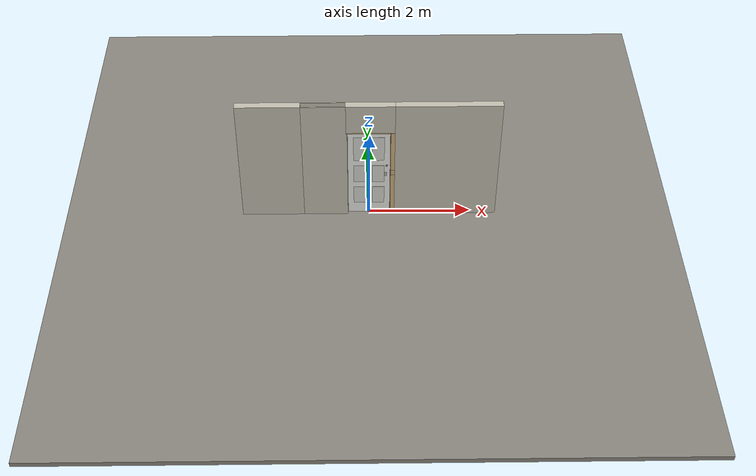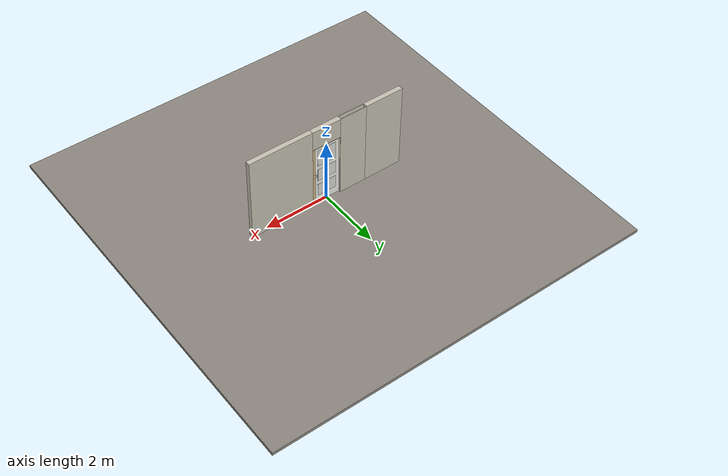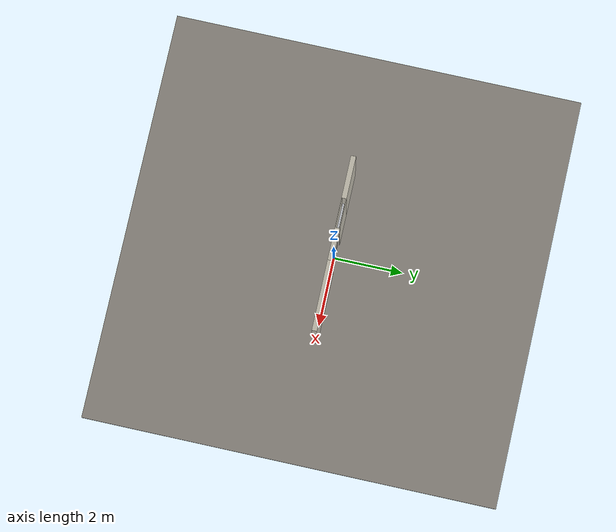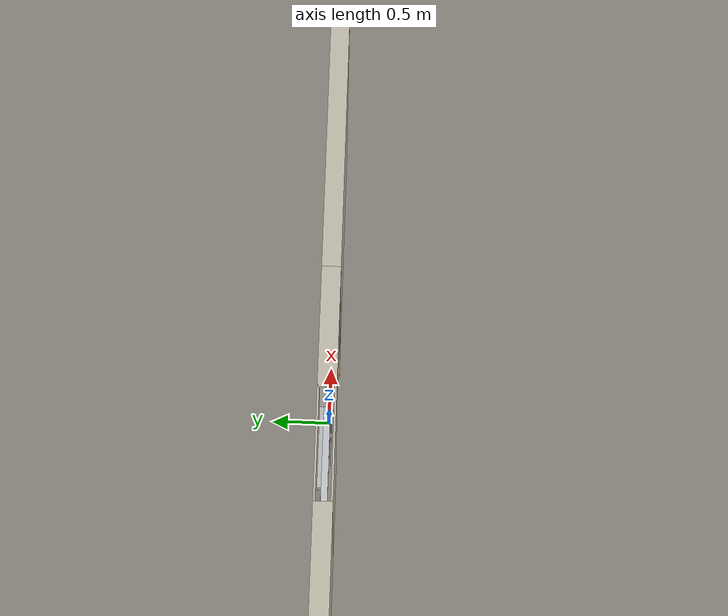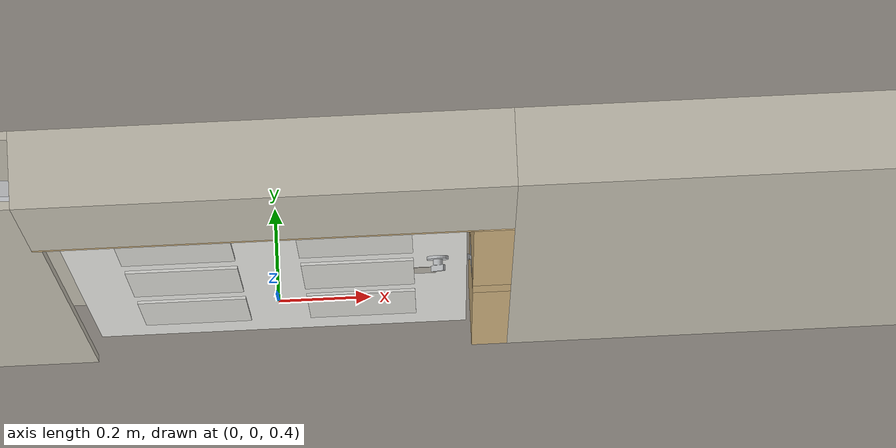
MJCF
<?xml version="1.0" ?>
<mujoco model="db0370_sliding_single_simple">
  <compiler angle="radian" meshdir="../../hardware" texturedir="../../textures" autolimits="true" inertiafromgeom="false"/>
  <option timestep="0.002" integrator="implicitfast" cone="elliptic" impratio="10" noslip_iterations="3">
    <flag multiccd="enable"/>
  </option>
  <size memory="16M"/>
  <default>
    <geom condim="4" solref="0.005 1" solimp="0.95 0.99 0.001"/>
    <joint solreflimit="0.005 1" solimplimit="0.95 0.99 0.001"/>
    <tendon solreflimit="0.005 1"/>
    <equality solref="0.002 1"/>
  </default>
  <visual>
    <headlight ambient="0.4 0.4 0.4" diffuse="0.7 0.7 0.7" specular="0.2 0.2 0.2"/>
    <quality shadowsize="4096"/>
    <map znear="0.01" zfar="60"/>
  </visual>
  <asset>
    <mesh name="thumbturn_eb5c9899a3" file="thumbturn_eb5c9899a3.obj"/>
    <material name="mat_floor" rgba="0.55 0.53 0.5 1" specular="0.2" shininess="0.15" reflectance="0"/>
    <material name="mat_wall" rgba="0.78 0.76 0.7 1" specular="0.2" shininess="0.1" reflectance="0"/>
    <material name="mat_frame" rgba="0.82 0.7 0.5 1" specular="0.2" shininess="0.45" reflectance="0"/>
    <material name="mat_track" rgba="0.8 0.81 0.83 1" specular="0.8" shininess="0.6" reflectance="0.4"/>
    <material name="mat_leaf" rgba="0.93 0.93 0.91 1" specular="0.2" shininess="0.49" reflectance="0"/>
    <material name="mat_leaf_panel" rgba="0.856 0.856 0.837 1" specular="0.2" shininess="0.49" reflectance="0"/>
    <material name="mat_roller" rgba="0.65 0.66 0.68 1" specular="0.74" shininess="0.5" reflectance="0.36"/>
    <material name="mat_op_nickel_satin" rgba="0.72 0.7 0.66 1" specular="0.8" shininess="0.65" reflectance="0.4"/>
    <material name="mat_hook" rgba="0.75 0.76 0.77 1" specular="0.8" shininess="0.65" reflectance="0.4"/>
    <texture name="skybox" type="skybox" builtin="gradient" rgb1="0.6 0.7 0.85" rgb2="0.9 0.92 0.95" width="256" height="256"/>
  </asset>
  <worldbody>
    <light name="sun" pos="1.5 -2.5 4" dir="-0.3 0.5 -0.8" directional="true" diffuse="0.8 0.8 0.8" specular="0.3 0.3 0.3" castshadow="true"/>
    <light name="fill" pos="-1.5 2.5 3" dir="0.3 -0.5 -0.7" directional="true" diffuse="0.35 0.35 0.4" castshadow="false"/>
    <camera name="robot_view" pos="0 -2.54875 1.73965" xyaxes="1 0 0 0 0.26963 0.962964" fovy="52"/>
    <camera name="far_view" pos="0 2.54875 1.73965" xyaxes="-1 0 0 0 -0.26963 0.962964" fovy="52"/>
    <camera name="iso" pos="1.93705 -2.14095 2.14745" xyaxes="0.741536 0.670913 0 -0.242917 0.268487 0.932151" fovy="46"/>
    <camera name="detail_handle" pos="0.4965 -0.8175 1.28" xyaxes="0.97561 0.219512 0 -0.070934 0.315262 0.94635" fovy="38"/>
    <geom name="floor" type="box" size="6 6 0.05" pos="0 0 -0.05" material="mat_floor" group="0" contype="1" conaffinity="1" friction="0.8 0.005 0.0001" density="2400"/>
    <geom name="wall_right" type="box" size="1.00225 0.0725 1.35" pos="1.49775 0 1.35" material="mat_wall" group="0" contype="1" conaffinity="1" friction="0.6 0.005 0.0001" density="800"/>
    <geom name="wall_header" type="box" size="0.4655 0.0725 0.3145" pos="0.03 0 2.3855" material="mat_wall" group="0" contype="1" conaffinity="1" friction="0.6 0.005 0.0001" density="800"/>
    <geom name="pocket_skin_n" type="box" size="0.4315 0.008 1.35" pos="-0.848 -0.0645 1.35" material="mat_wall" group="0" contype="1" conaffinity="1" friction="0.6 0.005 0.0001" density="800"/>
    <geom name="pocket_skin_p" type="box" size="0.4315 0.008 1.35" pos="-0.848 0.0645 1.35" material="mat_wall" group="0" contype="1" conaffinity="1" friction="0.6 0.005 0.0001" density="800"/>
    <geom name="wall_pocket_far" type="box" size="0.61025 0.0725 1.35" pos="-1.88975 0 1.35" material="mat_wall" group="0" contype="1" conaffinity="1" friction="0.6 0.005 0.0001" density="800"/>
    <geom name="jamb_head" type="box" size="0.4355 0.0725 0.0095" pos="0 0 2.0615" material="mat_frame" group="0" contype="1" conaffinity="1" friction="0.6 0.005 0.0001" density="300"/>
    <geom name="track_header" type="box" size="0.8425 0.025 0.04" pos="-0.386 0 2.111" material="mat_track" group="0" contype="1" conaffinity="1" friction="0.6 0.005 0.0001" density="2700"/>
    <geom name="leaf_hook_keeper" type="box" size="0.008 0.015 0.006" pos="0.4245 0 1.08" material="mat_hook" group="0" contype="1" conaffinity="1" friction="0.6 0.005 0.0001" density="7900"/>
    <geom name="jamb_latch_pwall_1080_n" type="box" size="0.0395 0.0245 0.06" pos="0.456 -0.048 1.08" material="mat_frame" group="0" contype="1" conaffinity="1" friction="0.6 0.005 0.0001" density="300"/>
    <geom name="jamb_latch_pwall_1080_p" type="box" size="0.0395 0.0245 0.06" pos="0.456 0.048 1.08" material="mat_frame" group="0" contype="1" conaffinity="1" friction="0.6 0.005 0.0001" density="300"/>
    <geom name="jamb_latch_pback_1080" type="box" size="0.004 0.0235 0.06" pos="0.4915 0 1.08" material="mat_frame" group="0" contype="1" conaffinity="1" friction="0.6 0.005 0.0001" density="300"/>
    <geom name="jamb_latch_0" type="box" size="0.0395 0.0725 0.51" pos="0.456 0 0.51" material="mat_frame" group="0" contype="1" conaffinity="1" friction="0.6 0.005 0.0001" density="300"/>
    <geom name="jamb_latch_1" type="box" size="0.0395 0.0725 0.456" pos="0.456 0 1.596" material="mat_frame" group="0" contype="1" conaffinity="1" friction="0.6 0.005 0.0001" density="300"/>
    <geom name="leaf_hook_keeper_plate_b" type="box" size="0.0295 0.003 0.0005" pos="0.416 0 1.017" quat="-0.5 -0.5 0.5 0.5" material="mat_hook" group="1" contype="0" conaffinity="0" density="7800"/>
    <geom name="leaf_hook_keeper_plate_l" type="box" size="0.003 0.06 0.0005" pos="0.416 0.0265 1.08" quat="-0.5 -0.5 0.5 0.5" material="mat_hook" group="1" contype="0" conaffinity="0" density="7800"/>
    <geom name="leaf_hook_keeper_plate_t" type="box" size="0.0295 0.003 0.0005" pos="0.416 0 1.143" quat="-0.5 -0.5 0.5 0.5" material="mat_hook" group="1" contype="0" conaffinity="0" density="7800"/>
    <geom name="leaf_hook_keeper_plate_r" type="box" size="0.003 0.06 0.0005" pos="0.416 -0.0265 1.08" quat="-0.5 -0.5 0.5 0.5" material="mat_hook" group="1" contype="0" conaffinity="0" density="7800"/>
    <geom name="track_header_bracket" type="box" size="0.674 0.01625 0.032" pos="-0.386 0.04075 2.111" material="mat_hook" group="1" contype="0" conaffinity="0" density="7850"/>
    <geom name="leaf_hook_keeper_bracket" type="box" size="0.0064 0.00475 0.005" pos="0.4245 0.01925 1.08" material="mat_hook" group="1" contype="0" conaffinity="0" density="7850"/>
    <site name="approach_point" pos="0 -1.5 0" quat="1 0 0 0" size="0.05" rgba="0.2 0.9 0.2 0.5" group="4"/>
    <site name="goal_point" pos="0 1.5 0" quat="1 0 0 0" size="0.05" rgba="0.2 0.9 0.2 0.5" group="4"/>
    <site name="door_plane_center" pos="0 0 1.026" quat="1 0 0 0" size="0.02" rgba="0.2 0.9 0.2 0.5" group="4"/>
    <body name="leaf" pos="0 0 0">
      <inertial pos="0.000904 0 1.028107" mass="12.14666" quat="0.500022 -0.500022 -0.499978 -0.499978" diaginertia="0.672694356 4.170103523 4.840310666"/>
      <joint name="leaf_slide" type="slide" axis="-1 0 0" limited="true" range="0 0.772" damping="2.619883" frictionloss="1.896639" armature="0.5"/>
      <geom name="leaf_slab" type="box" size="0.4065 0.0175 1.016" pos="0 0 1.028" material="mat_leaf" group="0" contype="1" conaffinity="1" friction="0.35 0.005 0.0001" density="1"/>
      <geom name="leaf_panel_0_n" type="box" size="0.11575 0.003 0.209032" pos="-0.18075 -0.0205 0.464552" material="mat_leaf_panel" group="1" contype="0" conaffinity="0" density="1"/>
      <geom name="leaf_panel_0_p" type="box" size="0.11575 0.003 0.209032" pos="-0.18075 0.0205 0.464552" material="mat_leaf_panel" group="1" contype="0" conaffinity="0" density="1"/>
      <geom name="leaf_panel_1_n" type="box" size="0.11575 0.003 0.209032" pos="0.18075 -0.0205 0.464552" material="mat_leaf_panel" group="1" contype="0" conaffinity="0" density="1"/>
      <geom name="leaf_panel_1_p" type="box" size="0.11575 0.003 0.209032" pos="0.18075 0.0205 0.464552" material="mat_leaf_panel" group="1" contype="0" conaffinity="0" density="1"/>
      <geom name="leaf_panel_2_n" type="box" size="0.11575 0.003 0.209032" pos="-0.18075 -0.0205 1.012616" material="mat_leaf_panel" group="1" contype="0" conaffinity="0" density="1"/>
      <geom name="leaf_panel_2_p" type="box" size="0.11575 0.003 0.209032" pos="-0.18075 0.0205 1.012616" material="mat_leaf_panel" group="1" contype="0" conaffinity="0" density="1"/>
      <geom name="leaf_panel_3_n" type="box" size="0.11575 0.003 0.209032" pos="0.18075 -0.0205 1.012616" material="mat_leaf_panel" group="1" contype="0" conaffinity="0" density="1"/>
      <geom name="leaf_panel_3_p" type="box" size="0.11575 0.003 0.209032" pos="0.18075 0.0205 1.012616" material="mat_leaf_panel" group="1" contype="0" conaffinity="0" density="1"/>
      <geom name="leaf_panel_4_n" type="box" size="0.11575 0.003 0.285376" pos="-0.18075 -0.0205 1.637024" material="mat_leaf_panel" group="1" contype="0" conaffinity="0" density="1"/>
      <geom name="leaf_panel_4_p" type="box" size="0.11575 0.003 0.285376" pos="-0.18075 0.0205 1.637024" material="mat_leaf_panel" group="1" contype="0" conaffinity="0" density="1"/>
      <geom name="leaf_panel_5_n" type="box" size="0.11575 0.003 0.285376" pos="0.18075 -0.0205 1.637024" material="mat_leaf_panel" group="1" contype="0" conaffinity="0" density="1"/>
      <geom name="leaf_panel_5_p" type="box" size="0.11575 0.003 0.285376" pos="0.18075 0.0205 1.637024" material="mat_leaf_panel" group="1" contype="0" conaffinity="0" density="1"/>
      <geom name="leaf_pull_n" type="box" size="0.025 0.0005 0.05" pos="0.3165 -0.018 1" material="mat_op_nickel_satin" group="1" contype="0" conaffinity="0" density="1000"/>
      <geom name="leaf_pull_p" type="box" size="0.025 0.0005 0.05" pos="0.3165 0.018 1" material="mat_op_nickel_satin" group="1" contype="0" conaffinity="0" density="1000"/>
      <geom name="leaf_hook_faceplate" type="box" size="0.0006 0.011 0.045" pos="0.4059 0 1.08" material="mat_hook" group="1" contype="0" conaffinity="0" density="7900"/>
      <site name="leaf_pull_grip_n" pos="0.3165 -0.0175 1" quat="1 0 0 0" size="0.012" rgba="0.2 0.9 0.2 0.5" group="4"/>
      <site name="leaf_pull_grip_p" pos="0.3165 0.0175 1" quat="1 0 0 0" size="0.012" rgba="0.2 0.9 0.2 0.5" group="4"/>
      <site name="leaf_edge_mid" pos="0.4065 0 1.028" quat="1 0 0 0" size="0.02" rgba="0.2 0.9 0.2 0.5" group="4"/>
      <body name="leaf_hook_thumbturn" pos="0.3465 -0.0175 1.22">
        <inertial pos="0 -0.012928 0" mass="0.178946" quat="0.678504 0.199079 -0.199079 -0.678504" diaginertia="0.000026045 0.000026215 0.000032438"/>
        <joint name="leaf_hook_thumbturn_hinge" type="hinge" axis="0 1 0" limited="true" range="0 1" damping="0.05" frictionloss="0.25" armature="0.005" ref="1"/>
        <geom name="leaf_hook_tt_mesh" type="mesh" mesh="thumbturn_eb5c9899a3" pos="0 0 0" quat="0.620545 0.620545 0.339005 -0.339005" material="mat_hook" group="0" contype="1" conaffinity="1" friction="0.6 0.005 0.0001" density="7100"/>
        <geom name="leaf_hook_tt_col" type="box" size="0.006 0.012 0.016" pos="0 -0.02 0" quat="0.877583 0 0.479426 0" material="mat_hook" group="3" contype="1" conaffinity="1" rgba="0.8 0.3 0.3 0.25" friction="0.6 0.005 0.0001" density="7100"/>
        <site name="leaf_hook_tt_grip" pos="0 -0.03 0" quat="0.877583 0 0.479426 0" size="0.01" rgba="0.2 0.9 0.2 0.5" group="4"/>
      </body>
      <body name="leaf_hook" pos="0.4065 0 1.08">
        <inertial pos="0.006651 0 -0.027503" mass="0.072048" quat="-0.148813 -0.148813 0.69127 -0.69127" diaginertia="0.000005266 0.00001511 0.000019175"/>
        <joint name="leaf_hook_hinge" type="hinge" axis="0 1 0" limited="true" range="0 1" damping="0.05" frictionloss="0.1" armature="0.005" ref="1"/>
        <geom name="leaf_hook_arm" type="box" size="0.022 0.005 0.006" pos="-0.002657 0 -0.025474" quat="0.877583 0 0.479426 0" material="mat_hook" group="0" contype="1" conaffinity="1" friction="0.6 0.005 0.0001" density="7900"/>
        <geom name="leaf_hook_tip" type="box" size="0.006 0.005 0.016" pos="0.019451 0 -0.030293" quat="0.877583 0 0.479426 0" material="mat_hook" group="0" contype="1" conaffinity="1" friction="0.6 0.005 0.0001" density="7900"/>
      </body>
    </body>
  </worldbody>
  <equality>
    <joint name="leaf_hook_couple" joint1="leaf_hook_hinge" joint2="leaf_hook_thumbturn_hinge" polycoef="0 1 0 0 0" active="true"/>
  </equality>
  <sensor>
    <jointpos name="leaf_slide_pos" joint="leaf_slide"/>
    <jointvel name="leaf_slide_vel" joint="leaf_slide"/>
    <jointpos name="leaf_hook_thumbturn_hinge_pos" joint="leaf_hook_thumbturn_hinge"/>
    <jointvel name="leaf_hook_thumbturn_hinge_vel" joint="leaf_hook_thumbturn_hinge"/>
    <jointpos name="leaf_hook_hinge_pos" joint="leaf_hook_hinge"/>
    <jointvel name="leaf_hook_hinge_vel" joint="leaf_hook_hinge"/>
  </sensor>
</mujoco>
